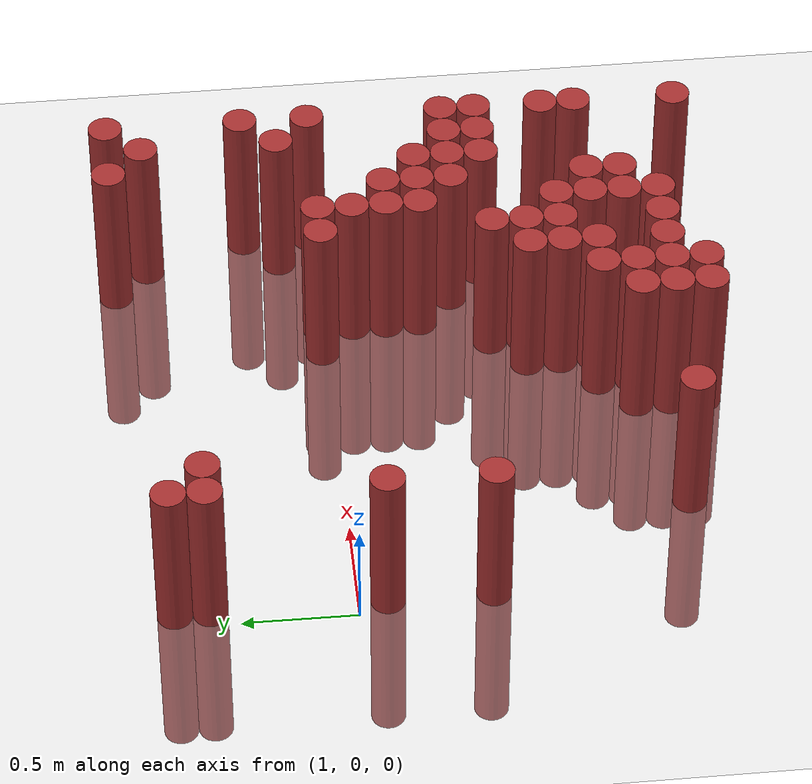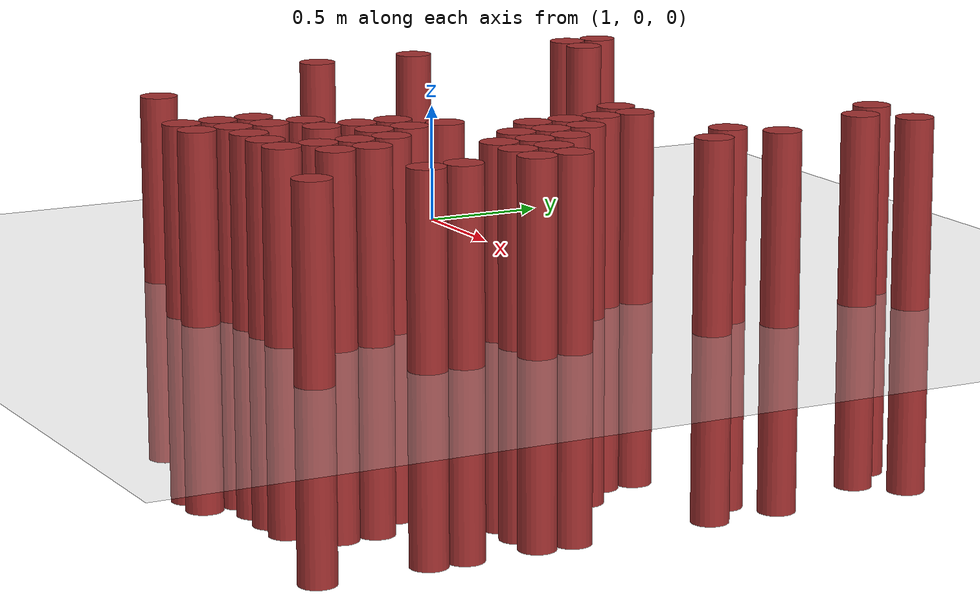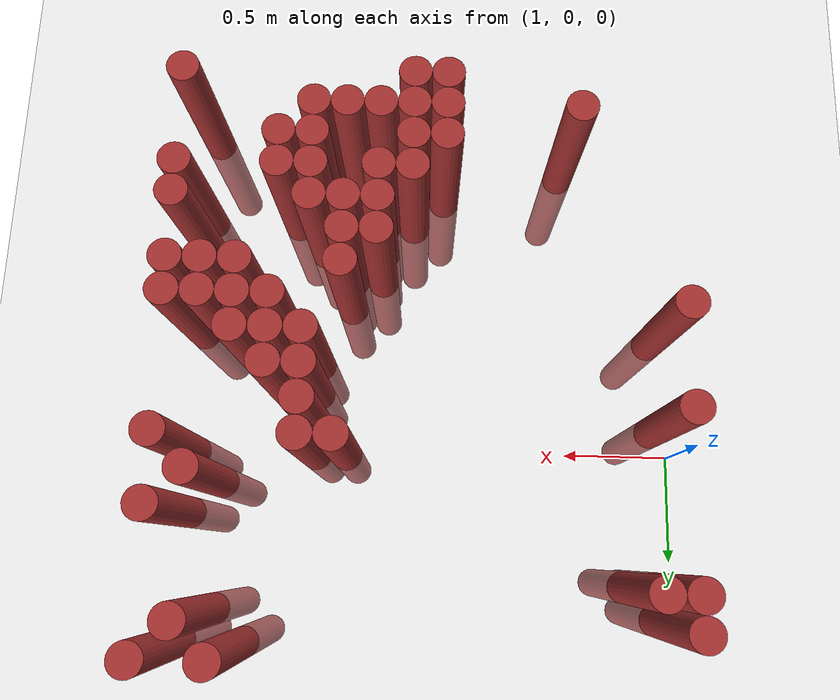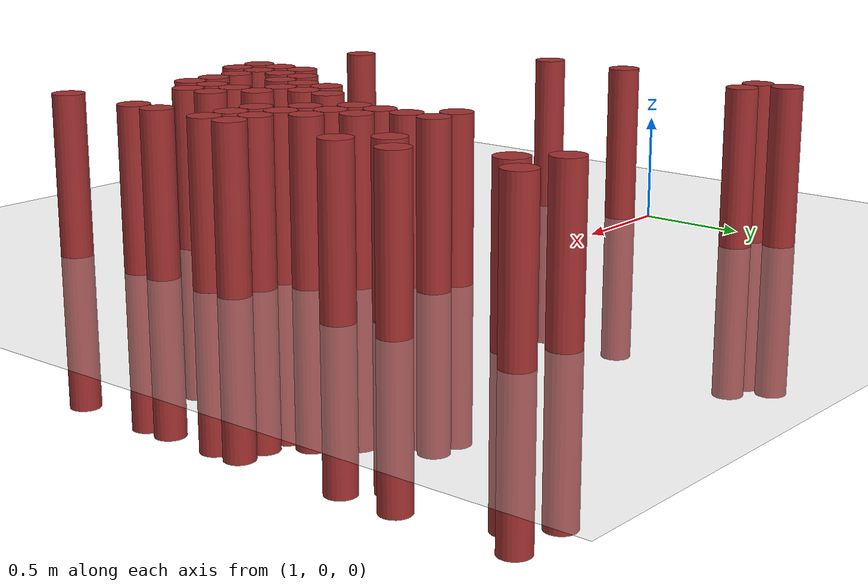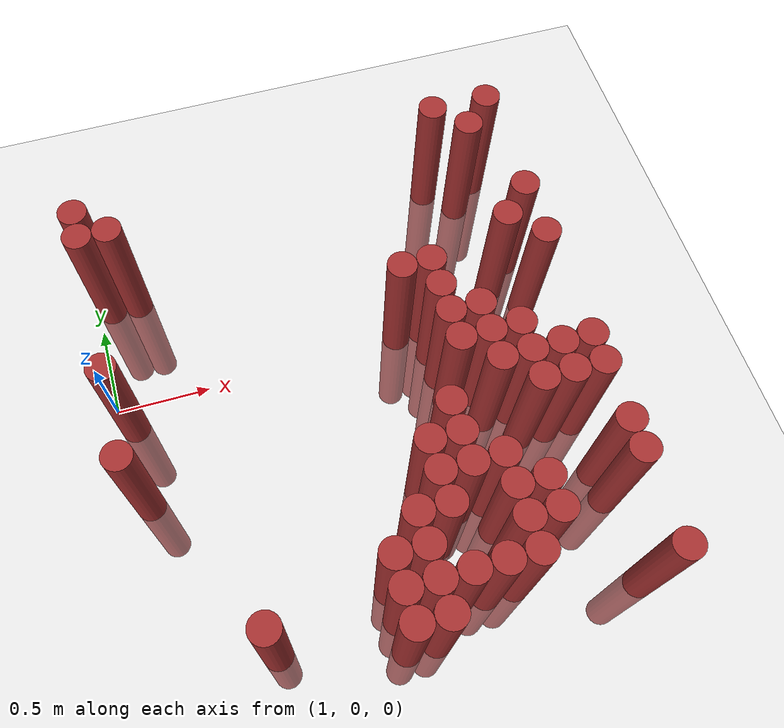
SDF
<sdf version="1.6">
 <world name="default">
  <model name="ground_plane">
   <static>1</static>
   <link name="link">
    <collision name="collision">
     <geometry><plane><normal>0 0 1</normal><size>100 100</size></plane></geometry>
     <surface><friction><ode><mu>100</mu><mu2>50</mu2></ode></friction></surface>
    </collision>
    <visual name="visual">
     <cast_shadows>0</cast_shadows>
     <geometry><plane><normal>0 0 1</normal><size>100 100</size></plane></geometry>
     <material>
      <script><uri>file://media/materials/scripts/gazebo.material</uri><name>Gazebo/Grey</name></script>
     </material>
    </visual>
   </link>
  </model>
  <model name="unit_cylinder_444">
   <static>1</static>
   <pose>1.075000 -0.575000 0.000000 0.000000 0.000000 0.000000</pose>
   <link name="link">
    <inertial>
     <mass>1</mass>
     <inertia><ixx>0.145833</ixx><ixy>0</ixy><ixz>0</ixz><iyy>0.145833</iyy><iyz>0</iyz><izz>0.125</izz></inertia>
    </inertial>
    <collision name="collision">
     <geometry><cylinder><radius>0.075000</radius><length>1.5</length></cylinder></geometry>
    </collision>
    <visual name="visual">
     <geometry><cylinder><radius>0.075000</radius><length>1.5</length></cylinder></geometry>
     <material>
      <ambient>0.648000 0.192000 0.192000 1</ambient>
      <diffuse>0.648000 0.192000 0.192000 1</diffuse>
     </material>
     <material>
      <script><name>Gazebo/Grey</name><uri>file://media/materials/scripts/gazebo.material</uri></script>
     </material>
    </visual>
   </link>
  </model>
  <model name="unit_cylinder_445">
   <static>1</static>
   <pose>1.075000 -0.125000 0.000000 0.000000 0.000000 0.000000</pose>
   <link name="link">
    <inertial>
     <mass>1</mass>
     <inertia><ixx>0.145833</ixx><ixy>0</ixy><ixz>0</ixz><iyy>0.145833</iyy><iyz>0</iyz><izz>0.125</izz></inertia>
    </inertial>
    <collision name="collision">
     <geometry><cylinder><radius>0.075000</radius><length>1.5</length></cylinder></geometry>
    </collision>
    <visual name="visual">
     <geometry><cylinder><radius>0.075000</radius><length>1.5</length></cylinder></geometry>
     <material>
      <ambient>0.648000 0.192000 0.192000 1</ambient>
      <diffuse>0.648000 0.192000 0.192000 1</diffuse>
     </material>
     <material>
      <script><name>Gazebo/Grey</name><uri>file://media/materials/scripts/gazebo.material</uri></script>
     </material>
    </visual>
   </link>
  </model>
  <model name="unit_cylinder_446">
   <static>1</static>
   <pose>1.075000 0.625000 0.000000 0.000000 0.000000 0.000000</pose>
   <link name="link">
    <inertial>
     <mass>1</mass>
     <inertia><ixx>0.145833</ixx><ixy>0</ixy><ixz>0</ixz><iyy>0.145833</iyy><iyz>0</iyz><izz>0.125</izz></inertia>
    </inertial>
    <collision name="collision">
     <geometry><cylinder><radius>0.075000</radius><length>1.5</length></cylinder></geometry>
    </collision>
    <visual name="visual">
     <geometry><cylinder><radius>0.075000</radius><length>1.5</length></cylinder></geometry>
     <material>
      <ambient>0.648000 0.192000 0.192000 1</ambient>
      <diffuse>0.648000 0.192000 0.192000 1</diffuse>
     </material>
     <material>
      <script><name>Gazebo/Grey</name><uri>file://media/materials/scripts/gazebo.material</uri></script>
     </material>
    </visual>
   </link>
  </model>
  <model name="unit_cylinder_447">
   <static>1</static>
   <pose>1.075000 0.775000 0.000000 0.000000 0.000000 0.000000</pose>
   <link name="link">
    <inertial>
     <mass>1</mass>
     <inertia><ixx>0.145833</ixx><ixy>0</ixy><ixz>0</ixz><iyy>0.145833</iyy><iyz>0</iyz><izz>0.125</izz></inertia>
    </inertial>
    <collision name="collision">
     <geometry><cylinder><radius>0.075000</radius><length>1.5</length></cylinder></geometry>
    </collision>
    <visual name="visual">
     <geometry><cylinder><radius>0.075000</radius><length>1.5</length></cylinder></geometry>
     <material>
      <ambient>0.648000 0.192000 0.192000 1</ambient>
      <diffuse>0.648000 0.192000 0.192000 1</diffuse>
     </material>
     <material>
      <script><name>Gazebo/Grey</name><uri>file://media/materials/scripts/gazebo.material</uri></script>
     </material>
    </visual>
   </link>
  </model>
  <model name="unit_cylinder_455">
   <static>1</static>
   <pose>1.225000 0.625000 0.000000 0.000000 0.000000 0.000000</pose>
   <link name="link">
    <inertial>
     <mass>1</mass>
     <inertia><ixx>0.145833</ixx><ixy>0</ixy><ixz>0</ixz><iyy>0.145833</iyy><iyz>0</iyz><izz>0.125</izz></inertia>
    </inertial>
    <collision name="collision">
     <geometry><cylinder><radius>0.075000</radius><length>1.5</length></cylinder></geometry>
    </collision>
    <visual name="visual">
     <geometry><cylinder><radius>0.075000</radius><length>1.5</length></cylinder></geometry>
     <material>
      <ambient>0.648000 0.192000 0.192000 1</ambient>
      <diffuse>0.648000 0.192000 0.192000 1</diffuse>
     </material>
     <material>
      <script><name>Gazebo/Grey</name><uri>file://media/materials/scripts/gazebo.material</uri></script>
     </material>
    </visual>
   </link>
  </model>
  <model name="unit_cylinder_472">
   <static>1</static>
   <pose>1.525000 -1.475000 0.000000 0.000000 0.000000 0.000000</pose>
   <link name="link">
    <inertial>
     <mass>1</mass>
     <inertia><ixx>0.145833</ixx><ixy>0</ixy><ixz>0</ixz><iyy>0.145833</iyy><iyz>0</iyz><izz>0.125</izz></inertia>
    </inertial>
    <collision name="collision">
     <geometry><cylinder><radius>0.075000</radius><length>1.5</length></cylinder></geometry>
    </collision>
    <visual name="visual">
     <geometry><cylinder><radius>0.075000</radius><length>1.5</length></cylinder></geometry>
     <material>
      <ambient>0.648000 0.192000 0.192000 1</ambient>
      <diffuse>0.648000 0.192000 0.192000 1</diffuse>
     </material>
     <material>
      <script><name>Gazebo/Grey</name><uri>file://media/materials/scripts/gazebo.material</uri></script>
     </material>
    </visual>
   </link>
  </model>
  <model name="unit_cylinder_497">
   <static>1</static>
   <pose>2.125000 -1.625000 0.000000 0.000000 0.000000 0.000000</pose>
   <link name="link">
    <inertial>
     <mass>1</mass>
     <inertia><ixx>0.145833</ixx><ixy>0</ixy><ixz>0</ixz><iyy>0.145833</iyy><iyz>0</iyz><izz>0.125</izz></inertia>
    </inertial>
    <collision name="collision">
     <geometry><cylinder><radius>0.075000</radius><length>1.5</length></cylinder></geometry>
    </collision>
    <visual name="visual">
     <geometry><cylinder><radius>0.075000</radius><length>1.5</length></cylinder></geometry>
     <material>
      <ambient>0.648000 0.192000 0.192000 1</ambient>
      <diffuse>0.648000 0.192000 0.192000 1</diffuse>
     </material>
     <material>
      <script><name>Gazebo/Grey</name><uri>file://media/materials/scripts/gazebo.material</uri></script>
     </material>
    </visual>
   </link>
  </model>
  <model name="unit_cylinder_498">
   <static>1</static>
   <pose>2.125000 -1.475000 0.000000 0.000000 0.000000 0.000000</pose>
   <link name="link">
    <inertial>
     <mass>1</mass>
     <inertia><ixx>0.145833</ixx><ixy>0</ixy><ixz>0</ixz><iyy>0.145833</iyy><iyz>0</iyz><izz>0.125</izz></inertia>
    </inertial>
    <collision name="collision">
     <geometry><cylinder><radius>0.075000</radius><length>1.5</length></cylinder></geometry>
    </collision>
    <visual name="visual">
     <geometry><cylinder><radius>0.075000</radius><length>1.5</length></cylinder></geometry>
     <material>
      <ambient>0.648000 0.192000 0.192000 1</ambient>
      <diffuse>0.648000 0.192000 0.192000 1</diffuse>
     </material>
     <material>
      <script><name>Gazebo/Grey</name><uri>file://media/materials/scripts/gazebo.material</uri></script>
     </material>
    </visual>
   </link>
  </model>
  <model name="unit_cylinder_499">
   <static>1</static>
   <pose>2.125000 -1.325000 0.000000 0.000000 0.000000 0.000000</pose>
   <link name="link">
    <inertial>
     <mass>1</mass>
     <inertia><ixx>0.145833</ixx><ixy>0</ixy><ixz>0</ixz><iyy>0.145833</iyy><iyz>0</iyz><izz>0.125</izz></inertia>
    </inertial>
    <collision name="collision">
     <geometry><cylinder><radius>0.075000</radius><length>1.5</length></cylinder></geometry>
    </collision>
    <visual name="visual">
     <geometry><cylinder><radius>0.075000</radius><length>1.5</length></cylinder></geometry>
     <material>
      <ambient>0.648000 0.192000 0.192000 1</ambient>
      <diffuse>0.648000 0.192000 0.192000 1</diffuse>
     </material>
     <material>
      <script><name>Gazebo/Grey</name><uri>file://media/materials/scripts/gazebo.material</uri></script>
     </material>
    </visual>
   </link>
  </model>
  <model name="unit_cylinder_506">
   <static>1</static>
   <pose>2.275000 -1.625000 0.000000 0.000000 0.000000 0.000000</pose>
   <link name="link">
    <inertial>
     <mass>1</mass>
     <inertia><ixx>0.145833</ixx><ixy>0</ixy><ixz>0</ixz><iyy>0.145833</iyy><iyz>0</iyz><izz>0.125</izz></inertia>
    </inertial>
    <collision name="collision">
     <geometry><cylinder><radius>0.075000</radius><length>1.5</length></cylinder></geometry>
    </collision>
    <visual name="visual">
     <geometry><cylinder><radius>0.075000</radius><length>1.5</length></cylinder></geometry>
     <material>
      <ambient>0.648000 0.192000 0.192000 1</ambient>
      <diffuse>0.648000 0.192000 0.192000 1</diffuse>
     </material>
     <material>
      <script><name>Gazebo/Grey</name><uri>file://media/materials/scripts/gazebo.material</uri></script>
     </material>
    </visual>
   </link>
  </model>
  <model name="unit_cylinder_507">
   <static>1</static>
   <pose>2.275000 -1.475000 0.000000 0.000000 0.000000 0.000000</pose>
   <link name="link">
    <inertial>
     <mass>1</mass>
     <inertia><ixx>0.145833</ixx><ixy>0</ixy><ixz>0</ixz><iyy>0.145833</iyy><iyz>0</iyz><izz>0.125</izz></inertia>
    </inertial>
    <collision name="collision">
     <geometry><cylinder><radius>0.075000</radius><length>1.5</length></cylinder></geometry>
    </collision>
    <visual name="visual">
     <geometry><cylinder><radius>0.075000</radius><length>1.5</length></cylinder></geometry>
     <material>
      <ambient>0.648000 0.192000 0.192000 1</ambient>
      <diffuse>0.648000 0.192000 0.192000 1</diffuse>
     </material>
     <material>
      <script><name>Gazebo/Grey</name><uri>file://media/materials/scripts/gazebo.material</uri></script>
     </material>
    </visual>
   </link>
  </model>
  <model name="unit_cylinder_508">
   <static>1</static>
   <pose>2.275000 -1.325000 0.000000 0.000000 0.000000 0.000000</pose>
   <link name="link">
    <inertial>
     <mass>1</mass>
     <inertia><ixx>0.145833</ixx><ixy>0</ixy><ixz>0</ixz><iyy>0.145833</iyy><iyz>0</iyz><izz>0.125</izz></inertia>
    </inertial>
    <collision name="collision">
     <geometry><cylinder><radius>0.075000</radius><length>1.5</length></cylinder></geometry>
    </collision>
    <visual name="visual">
     <geometry><cylinder><radius>0.075000</radius><length>1.5</length></cylinder></geometry>
     <material>
      <ambient>0.648000 0.192000 0.192000 1</ambient>
      <diffuse>0.648000 0.192000 0.192000 1</diffuse>
     </material>
     <material>
      <script><name>Gazebo/Grey</name><uri>file://media/materials/scripts/gazebo.material</uri></script>
     </material>
    </visual>
   </link>
  </model>
  <model name="unit_cylinder_509">
   <static>1</static>
   <pose>2.275000 -1.175000 0.000000 0.000000 0.000000 0.000000</pose>
   <link name="link">
    <inertial>
     <mass>1</mass>
     <inertia><ixx>0.145833</ixx><ixy>0</ixy><ixz>0</ixz><iyy>0.145833</iyy><iyz>0</iyz><izz>0.125</izz></inertia>
    </inertial>
    <collision name="collision">
     <geometry><cylinder><radius>0.075000</radius><length>1.5</length></cylinder></geometry>
    </collision>
    <visual name="visual">
     <geometry><cylinder><radius>0.075000</radius><length>1.5</length></cylinder></geometry>
     <material>
      <ambient>0.648000 0.192000 0.192000 1</ambient>
      <diffuse>0.648000 0.192000 0.192000 1</diffuse>
     </material>
     <material>
      <script><name>Gazebo/Grey</name><uri>file://media/materials/scripts/gazebo.material</uri></script>
     </material>
    </visual>
   </link>
  </model>
  <model name="unit_cylinder_513">
   <static>1</static>
   <pose>2.425000 -1.475000 0.000000 0.000000 0.000000 0.000000</pose>
   <link name="link">
    <inertial>
     <mass>1</mass>
     <inertia><ixx>0.145833</ixx><ixy>0</ixy><ixz>0</ixz><iyy>0.145833</iyy><iyz>0</iyz><izz>0.125</izz></inertia>
    </inertial>
    <collision name="collision">
     <geometry><cylinder><radius>0.075000</radius><length>1.5</length></cylinder></geometry>
    </collision>
    <visual name="visual">
     <geometry><cylinder><radius>0.075000</radius><length>1.5</length></cylinder></geometry>
     <material>
      <ambient>0.648000 0.192000 0.192000 1</ambient>
      <diffuse>0.648000 0.192000 0.192000 1</diffuse>
     </material>
     <material>
      <script><name>Gazebo/Grey</name><uri>file://media/materials/scripts/gazebo.material</uri></script>
     </material>
    </visual>
   </link>
  </model>
  <model name="unit_cylinder_514">
   <static>1</static>
   <pose>2.425000 -1.175000 0.000000 0.000000 0.000000 0.000000</pose>
   <link name="link">
    <inertial>
     <mass>1</mass>
     <inertia><ixx>0.145833</ixx><ixy>0</ixy><ixz>0</ixz><iyy>0.145833</iyy><iyz>0</iyz><izz>0.125</izz></inertia>
    </inertial>
    <collision name="collision">
     <geometry><cylinder><radius>0.075000</radius><length>1.5</length></cylinder></geometry>
    </collision>
    <visual name="visual">
     <geometry><cylinder><radius>0.075000</radius><length>1.5</length></cylinder></geometry>
     <material>
      <ambient>0.648000 0.192000 0.192000 1</ambient>
      <diffuse>0.648000 0.192000 0.192000 1</diffuse>
     </material>
     <material>
      <script><name>Gazebo/Grey</name><uri>file://media/materials/scripts/gazebo.material</uri></script>
     </material>
    </visual>
   </link>
  </model>
  <model name="unit_cylinder_515">
   <static>1</static>
   <pose>2.425000 -1.025000 0.000000 0.000000 0.000000 0.000000</pose>
   <link name="link">
    <inertial>
     <mass>1</mass>
     <inertia><ixx>0.145833</ixx><ixy>0</ixy><ixz>0</ixz><iyy>0.145833</iyy><iyz>0</iyz><izz>0.125</izz></inertia>
    </inertial>
    <collision name="collision">
     <geometry><cylinder><radius>0.075000</radius><length>1.5</length></cylinder></geometry>
    </collision>
    <visual name="visual">
     <geometry><cylinder><radius>0.075000</radius><length>1.5</length></cylinder></geometry>
     <material>
      <ambient>0.648000 0.192000 0.192000 1</ambient>
      <diffuse>0.648000 0.192000 0.192000 1</diffuse>
     </material>
     <material>
      <script><name>Gazebo/Grey</name><uri>file://media/materials/scripts/gazebo.material</uri></script>
     </material>
    </visual>
   </link>
  </model>
  <model name="unit_cylinder_516">
   <static>1</static>
   <pose>2.425000 -0.875000 0.000000 0.000000 0.000000 0.000000</pose>
   <link name="link">
    <inertial>
     <mass>1</mass>
     <inertia><ixx>0.145833</ixx><ixy>0</ixy><ixz>0</ixz><iyy>0.145833</iyy><iyz>0</iyz><izz>0.125</izz></inertia>
    </inertial>
    <collision name="collision">
     <geometry><cylinder><radius>0.075000</radius><length>1.5</length></cylinder></geometry>
    </collision>
    <visual name="visual">
     <geometry><cylinder><radius>0.075000</radius><length>1.5</length></cylinder></geometry>
     <material>
      <ambient>0.648000 0.192000 0.192000 1</ambient>
      <diffuse>0.648000 0.192000 0.192000 1</diffuse>
     </material>
     <material>
      <script><name>Gazebo/Grey</name><uri>file://media/materials/scripts/gazebo.material</uri></script>
     </material>
    </visual>
   </link>
  </model>
  <model name="unit_cylinder_519">
   <static>1</static>
   <pose>2.575000 -1.475000 0.000000 0.000000 0.000000 0.000000</pose>
   <link name="link">
    <inertial>
     <mass>1</mass>
     <inertia><ixx>0.145833</ixx><ixy>0</ixy><ixz>0</ixz><iyy>0.145833</iyy><iyz>0</iyz><izz>0.125</izz></inertia>
    </inertial>
    <collision name="collision">
     <geometry><cylinder><radius>0.075000</radius><length>1.5</length></cylinder></geometry>
    </collision>
    <visual name="visual">
     <geometry><cylinder><radius>0.075000</radius><length>1.5</length></cylinder></geometry>
     <material>
      <ambient>0.648000 0.192000 0.192000 1</ambient>
      <diffuse>0.648000 0.192000 0.192000 1</diffuse>
     </material>
     <material>
      <script><name>Gazebo/Grey</name><uri>file://media/materials/scripts/gazebo.material</uri></script>
     </material>
    </visual>
   </link>
  </model>
  <model name="unit_cylinder_520">
   <static>1</static>
   <pose>2.575000 -1.025000 0.000000 0.000000 0.000000 0.000000</pose>
   <link name="link">
    <inertial>
     <mass>1</mass>
     <inertia><ixx>0.145833</ixx><ixy>0</ixy><ixz>0</ixz><iyy>0.145833</iyy><iyz>0</iyz><izz>0.125</izz></inertia>
    </inertial>
    <collision name="collision">
     <geometry><cylinder><radius>0.075000</radius><length>1.5</length></cylinder></geometry>
    </collision>
    <visual name="visual">
     <geometry><cylinder><radius>0.075000</radius><length>1.5</length></cylinder></geometry>
     <material>
      <ambient>0.648000 0.192000 0.192000 1</ambient>
      <diffuse>0.648000 0.192000 0.192000 1</diffuse>
     </material>
     <material>
      <script><name>Gazebo/Grey</name><uri>file://media/materials/scripts/gazebo.material</uri></script>
     </material>
    </visual>
   </link>
  </model>
  <model name="unit_cylinder_521">
   <static>1</static>
   <pose>2.575000 -0.875000 0.000000 0.000000 0.000000 0.000000</pose>
   <link name="link">
    <inertial>
     <mass>1</mass>
     <inertia><ixx>0.145833</ixx><ixy>0</ixy><ixz>0</ixz><iyy>0.145833</iyy><iyz>0</iyz><izz>0.125</izz></inertia>
    </inertial>
    <collision name="collision">
     <geometry><cylinder><radius>0.075000</radius><length>1.5</length></cylinder></geometry>
    </collision>
    <visual name="visual">
     <geometry><cylinder><radius>0.075000</radius><length>1.5</length></cylinder></geometry>
     <material>
      <ambient>0.648000 0.192000 0.192000 1</ambient>
      <diffuse>0.648000 0.192000 0.192000 1</diffuse>
     </material>
     <material>
      <script><name>Gazebo/Grey</name><uri>file://media/materials/scripts/gazebo.material</uri></script>
     </material>
    </visual>
   </link>
  </model>
  <model name="unit_cylinder_522">
   <static>1</static>
   <pose>2.575000 -0.725000 0.000000 0.000000 0.000000 0.000000</pose>
   <link name="link">
    <inertial>
     <mass>1</mass>
     <inertia><ixx>0.145833</ixx><ixy>0</ixy><ixz>0</ixz><iyy>0.145833</iyy><iyz>0</iyz><izz>0.125</izz></inertia>
    </inertial>
    <collision name="collision">
     <geometry><cylinder><radius>0.075000</radius><length>1.5</length></cylinder></geometry>
    </collision>
    <visual name="visual">
     <geometry><cylinder><radius>0.075000</radius><length>1.5</length></cylinder></geometry>
     <material>
      <ambient>0.648000 0.192000 0.192000 1</ambient>
      <diffuse>0.648000 0.192000 0.192000 1</diffuse>
     </material>
     <material>
      <script><name>Gazebo/Grey</name><uri>file://media/materials/scripts/gazebo.material</uri></script>
     </material>
    </visual>
   </link>
  </model>
  <model name="unit_cylinder_523">
   <static>1</static>
   <pose>2.575000 0.025000 0.000000 0.000000 0.000000 0.000000</pose>
   <link name="link">
    <inertial>
     <mass>1</mass>
     <inertia><ixx>0.145833</ixx><ixy>0</ixy><ixz>0</ixz><iyy>0.145833</iyy><iyz>0</iyz><izz>0.125</izz></inertia>
    </inertial>
    <collision name="collision">
     <geometry><cylinder><radius>0.075000</radius><length>1.5</length></cylinder></geometry>
    </collision>
    <visual name="visual">
     <geometry><cylinder><radius>0.075000</radius><length>1.5</length></cylinder></geometry>
     <material>
      <ambient>0.648000 0.192000 0.192000 1</ambient>
      <diffuse>0.648000 0.192000 0.192000 1</diffuse>
     </material>
     <material>
      <script><name>Gazebo/Grey</name><uri>file://media/materials/scripts/gazebo.material</uri></script>
     </material>
    </visual>
   </link>
  </model>
  <model name="unit_cylinder_530">
   <static>1</static>
   <pose>2.725000 -1.475000 0.000000 0.000000 0.000000 0.000000</pose>
   <link name="link">
    <inertial>
     <mass>1</mass>
     <inertia><ixx>0.145833</ixx><ixy>0</ixy><ixz>0</ixz><iyy>0.145833</iyy><iyz>0</iyz><izz>0.125</izz></inertia>
    </inertial>
    <collision name="collision">
     <geometry><cylinder><radius>0.075000</radius><length>1.5</length></cylinder></geometry>
    </collision>
    <visual name="visual">
     <geometry><cylinder><radius>0.075000</radius><length>1.5</length></cylinder></geometry>
     <material>
      <ambient>0.648000 0.192000 0.192000 1</ambient>
      <diffuse>0.648000 0.192000 0.192000 1</diffuse>
     </material>
     <material>
      <script><name>Gazebo/Grey</name><uri>file://media/materials/scripts/gazebo.material</uri></script>
     </material>
    </visual>
   </link>
  </model>
  <model name="unit_cylinder_531">
   <static>1</static>
   <pose>2.725000 -1.325000 0.000000 0.000000 0.000000 0.000000</pose>
   <link name="link">
    <inertial>
     <mass>1</mass>
     <inertia><ixx>0.145833</ixx><ixy>0</ixy><ixz>0</ixz><iyy>0.145833</iyy><iyz>0</iyz><izz>0.125</izz></inertia>
    </inertial>
    <collision name="collision">
     <geometry><cylinder><radius>0.075000</radius><length>1.5</length></cylinder></geometry>
    </collision>
    <visual name="visual">
     <geometry><cylinder><radius>0.075000</radius><length>1.5</length></cylinder></geometry>
     <material>
      <ambient>0.648000 0.192000 0.192000 1</ambient>
      <diffuse>0.648000 0.192000 0.192000 1</diffuse>
     </material>
     <material>
      <script><name>Gazebo/Grey</name><uri>file://media/materials/scripts/gazebo.material</uri></script>
     </material>
    </visual>
   </link>
  </model>
  <model name="unit_cylinder_532">
   <static>1</static>
   <pose>2.725000 -1.175000 0.000000 0.000000 0.000000 0.000000</pose>
   <link name="link">
    <inertial>
     <mass>1</mass>
     <inertia><ixx>0.145833</ixx><ixy>0</ixy><ixz>0</ixz><iyy>0.145833</iyy><iyz>0</iyz><izz>0.125</izz></inertia>
    </inertial>
    <collision name="collision">
     <geometry><cylinder><radius>0.075000</radius><length>1.5</length></cylinder></geometry>
    </collision>
    <visual name="visual">
     <geometry><cylinder><radius>0.075000</radius><length>1.5</length></cylinder></geometry>
     <material>
      <ambient>0.648000 0.192000 0.192000 1</ambient>
      <diffuse>0.648000 0.192000 0.192000 1</diffuse>
     </material>
     <material>
      <script><name>Gazebo/Grey</name><uri>file://media/materials/scripts/gazebo.material</uri></script>
     </material>
    </visual>
   </link>
  </model>
  <model name="unit_cylinder_533">
   <static>1</static>
   <pose>2.725000 -1.025000 0.000000 0.000000 0.000000 0.000000</pose>
   <link name="link">
    <inertial>
     <mass>1</mass>
     <inertia><ixx>0.145833</ixx><ixy>0</ixy><ixz>0</ixz><iyy>0.145833</iyy><iyz>0</iyz><izz>0.125</izz></inertia>
    </inertial>
    <collision name="collision">
     <geometry><cylinder><radius>0.075000</radius><length>1.5</length></cylinder></geometry>
    </collision>
    <visual name="visual">
     <geometry><cylinder><radius>0.075000</radius><length>1.5</length></cylinder></geometry>
     <material>
      <ambient>0.648000 0.192000 0.192000 1</ambient>
      <diffuse>0.648000 0.192000 0.192000 1</diffuse>
     </material>
     <material>
      <script><name>Gazebo/Grey</name><uri>file://media/materials/scripts/gazebo.material</uri></script>
     </material>
    </visual>
   </link>
  </model>
  <model name="unit_cylinder_534">
   <static>1</static>
   <pose>2.725000 -0.425000 0.000000 0.000000 0.000000 0.000000</pose>
   <link name="link">
    <inertial>
     <mass>1</mass>
     <inertia><ixx>0.145833</ixx><ixy>0</ixy><ixz>0</ixz><iyy>0.145833</iyy><iyz>0</iyz><izz>0.125</izz></inertia>
    </inertial>
    <collision name="collision">
     <geometry><cylinder><radius>0.075000</radius><length>1.5</length></cylinder></geometry>
    </collision>
    <visual name="visual">
     <geometry><cylinder><radius>0.075000</radius><length>1.5</length></cylinder></geometry>
     <material>
      <ambient>0.648000 0.192000 0.192000 1</ambient>
      <diffuse>0.648000 0.192000 0.192000 1</diffuse>
     </material>
     <material>
      <script><name>Gazebo/Grey</name><uri>file://media/materials/scripts/gazebo.material</uri></script>
     </material>
    </visual>
   </link>
  </model>
  <model name="unit_cylinder_535">
   <static>1</static>
   <pose>2.725000 -0.275000 0.000000 0.000000 0.000000 0.000000</pose>
   <link name="link">
    <inertial>
     <mass>1</mass>
     <inertia><ixx>0.145833</ixx><ixy>0</ixy><ixz>0</ixz><iyy>0.145833</iyy><iyz>0</iyz><izz>0.125</izz></inertia>
    </inertial>
    <collision name="collision">
     <geometry><cylinder><radius>0.075000</radius><length>1.5</length></cylinder></geometry>
    </collision>
    <visual name="visual">
     <geometry><cylinder><radius>0.075000</radius><length>1.5</length></cylinder></geometry>
     <material>
      <ambient>0.648000 0.192000 0.192000 1</ambient>
      <diffuse>0.648000 0.192000 0.192000 1</diffuse>
     </material>
     <material>
      <script><name>Gazebo/Grey</name><uri>file://media/materials/scripts/gazebo.material</uri></script>
     </material>
    </visual>
   </link>
  </model>
  <model name="unit_cylinder_536">
   <static>1</static>
   <pose>2.725000 -0.125000 0.000000 0.000000 0.000000 0.000000</pose>
   <link name="link">
    <inertial>
     <mass>1</mass>
     <inertia><ixx>0.145833</ixx><ixy>0</ixy><ixz>0</ixz><iyy>0.145833</iyy><iyz>0</iyz><izz>0.125</izz></inertia>
    </inertial>
    <collision name="collision">
     <geometry><cylinder><radius>0.075000</radius><length>1.5</length></cylinder></geometry>
    </collision>
    <visual name="visual">
     <geometry><cylinder><radius>0.075000</radius><length>1.5</length></cylinder></geometry>
     <material>
      <ambient>0.648000 0.192000 0.192000 1</ambient>
      <diffuse>0.648000 0.192000 0.192000 1</diffuse>
     </material>
     <material>
      <script><name>Gazebo/Grey</name><uri>file://media/materials/scripts/gazebo.material</uri></script>
     </material>
    </visual>
   </link>
  </model>
  <model name="unit_cylinder_537">
   <static>1</static>
   <pose>2.725000 0.025000 0.000000 0.000000 0.000000 0.000000</pose>
   <link name="link">
    <inertial>
     <mass>1</mass>
     <inertia><ixx>0.145833</ixx><ixy>0</ixy><ixz>0</ixz><iyy>0.145833</iyy><iyz>0</iyz><izz>0.125</izz></inertia>
    </inertial>
    <collision name="collision">
     <geometry><cylinder><radius>0.075000</radius><length>1.5</length></cylinder></geometry>
    </collision>
    <visual name="visual">
     <geometry><cylinder><radius>0.075000</radius><length>1.5</length></cylinder></geometry>
     <material>
      <ambient>0.648000 0.192000 0.192000 1</ambient>
      <diffuse>0.648000 0.192000 0.192000 1</diffuse>
     </material>
     <material>
      <script><name>Gazebo/Grey</name><uri>file://media/materials/scripts/gazebo.material</uri></script>
     </material>
    </visual>
   </link>
  </model>
  <model name="unit_cylinder_544">
   <static>1</static>
   <pose>2.875000 -1.325000 0.000000 0.000000 0.000000 0.000000</pose>
   <link name="link">
    <inertial>
     <mass>1</mass>
     <inertia><ixx>0.145833</ixx><ixy>0</ixy><ixz>0</ixz><iyy>0.145833</iyy><iyz>0</iyz><izz>0.125</izz></inertia>
    </inertial>
    <collision name="collision">
     <geometry><cylinder><radius>0.075000</radius><length>1.5</length></cylinder></geometry>
    </collision>
    <visual name="visual">
     <geometry><cylinder><radius>0.075000</radius><length>1.5</length></cylinder></geometry>
     <material>
      <ambient>0.648000 0.192000 0.192000 1</ambient>
      <diffuse>0.648000 0.192000 0.192000 1</diffuse>
     </material>
     <material>
      <script><name>Gazebo/Grey</name><uri>file://media/materials/scripts/gazebo.material</uri></script>
     </material>
    </visual>
   </link>
  </model>
  <model name="unit_cylinder_545">
   <static>1</static>
   <pose>2.875000 -1.175000 0.000000 0.000000 0.000000 0.000000</pose>
   <link name="link">
    <inertial>
     <mass>1</mass>
     <inertia><ixx>0.145833</ixx><ixy>0</ixy><ixz>0</ixz><iyy>0.145833</iyy><iyz>0</iyz><izz>0.125</izz></inertia>
    </inertial>
    <collision name="collision">
     <geometry><cylinder><radius>0.075000</radius><length>1.5</length></cylinder></geometry>
    </collision>
    <visual name="visual">
     <geometry><cylinder><radius>0.075000</radius><length>1.5</length></cylinder></geometry>
     <material>
      <ambient>0.648000 0.192000 0.192000 1</ambient>
      <diffuse>0.648000 0.192000 0.192000 1</diffuse>
     </material>
     <material>
      <script><name>Gazebo/Grey</name><uri>file://media/materials/scripts/gazebo.material</uri></script>
     </material>
    </visual>
   </link>
  </model>
  <model name="unit_cylinder_546">
   <static>1</static>
   <pose>2.875000 -0.575000 0.000000 0.000000 0.000000 0.000000</pose>
   <link name="link">
    <inertial>
     <mass>1</mass>
     <inertia><ixx>0.145833</ixx><ixy>0</ixy><ixz>0</ixz><iyy>0.145833</iyy><iyz>0</iyz><izz>0.125</izz></inertia>
    </inertial>
    <collision name="collision">
     <geometry><cylinder><radius>0.075000</radius><length>1.5</length></cylinder></geometry>
    </collision>
    <visual name="visual">
     <geometry><cylinder><radius>0.075000</radius><length>1.5</length></cylinder></geometry>
     <material>
      <ambient>0.648000 0.192000 0.192000 1</ambient>
      <diffuse>0.648000 0.192000 0.192000 1</diffuse>
     </material>
     <material>
      <script><name>Gazebo/Grey</name><uri>file://media/materials/scripts/gazebo.material</uri></script>
     </material>
    </visual>
   </link>
  </model>
  <model name="unit_cylinder_547">
   <static>1</static>
   <pose>2.875000 -0.425000 0.000000 0.000000 0.000000 0.000000</pose>
   <link name="link">
    <inertial>
     <mass>1</mass>
     <inertia><ixx>0.145833</ixx><ixy>0</ixy><ixz>0</ixz><iyy>0.145833</iyy><iyz>0</iyz><izz>0.125</izz></inertia>
    </inertial>
    <collision name="collision">
     <geometry><cylinder><radius>0.075000</radius><length>1.5</length></cylinder></geometry>
    </collision>
    <visual name="visual">
     <geometry><cylinder><radius>0.075000</radius><length>1.5</length></cylinder></geometry>
     <material>
      <ambient>0.648000 0.192000 0.192000 1</ambient>
      <diffuse>0.648000 0.192000 0.192000 1</diffuse>
     </material>
     <material>
      <script><name>Gazebo/Grey</name><uri>file://media/materials/scripts/gazebo.material</uri></script>
     </material>
    </visual>
   </link>
  </model>
  <model name="unit_cylinder_548">
   <static>1</static>
   <pose>2.875000 -0.275000 0.000000 0.000000 0.000000 0.000000</pose>
   <link name="link">
    <inertial>
     <mass>1</mass>
     <inertia><ixx>0.145833</ixx><ixy>0</ixy><ixz>0</ixz><iyy>0.145833</iyy><iyz>0</iyz><izz>0.125</izz></inertia>
    </inertial>
    <collision name="collision">
     <geometry><cylinder><radius>0.075000</radius><length>1.5</length></cylinder></geometry>
    </collision>
    <visual name="visual">
     <geometry><cylinder><radius>0.075000</radius><length>1.5</length></cylinder></geometry>
     <material>
      <ambient>0.648000 0.192000 0.192000 1</ambient>
      <diffuse>0.648000 0.192000 0.192000 1</diffuse>
     </material>
     <material>
      <script><name>Gazebo/Grey</name><uri>file://media/materials/scripts/gazebo.material</uri></script>
     </material>
    </visual>
   </link>
  </model>
  <model name="unit_cylinder_554">
   <static>1</static>
   <pose>3.025000 -0.725000 0.000000 0.000000 0.000000 0.000000</pose>
   <link name="link">
    <inertial>
     <mass>1</mass>
     <inertia><ixx>0.145833</ixx><ixy>0</ixy><ixz>0</ixz><iyy>0.145833</iyy><iyz>0</iyz><izz>0.125</izz></inertia>
    </inertial>
    <collision name="collision">
     <geometry><cylinder><radius>0.075000</radius><length>1.5</length></cylinder></geometry>
    </collision>
    <visual name="visual">
     <geometry><cylinder><radius>0.075000</radius><length>1.5</length></cylinder></geometry>
     <material>
      <ambient>0.648000 0.192000 0.192000 1</ambient>
      <diffuse>0.648000 0.192000 0.192000 1</diffuse>
     </material>
     <material>
      <script><name>Gazebo/Grey</name><uri>file://media/materials/scripts/gazebo.material</uri></script>
     </material>
    </visual>
   </link>
  </model>
  <model name="unit_cylinder_555">
   <static>1</static>
   <pose>3.025000 -0.575000 0.000000 0.000000 0.000000 0.000000</pose>
   <link name="link">
    <inertial>
     <mass>1</mass>
     <inertia><ixx>0.145833</ixx><ixy>0</ixy><ixz>0</ixz><iyy>0.145833</iyy><iyz>0</iyz><izz>0.125</izz></inertia>
    </inertial>
    <collision name="collision">
     <geometry><cylinder><radius>0.075000</radius><length>1.5</length></cylinder></geometry>
    </collision>
    <visual name="visual">
     <geometry><cylinder><radius>0.075000</radius><length>1.5</length></cylinder></geometry>
     <material>
      <ambient>0.648000 0.192000 0.192000 1</ambient>
      <diffuse>0.648000 0.192000 0.192000 1</diffuse>
     </material>
     <material>
      <script><name>Gazebo/Grey</name><uri>file://media/materials/scripts/gazebo.material</uri></script>
     </material>
    </visual>
   </link>
  </model>
  <model name="unit_cylinder_556">
   <static>1</static>
   <pose>3.025000 -0.425000 0.000000 0.000000 0.000000 0.000000</pose>
   <link name="link">
    <inertial>
     <mass>1</mass>
     <inertia><ixx>0.145833</ixx><ixy>0</ixy><ixz>0</ixz><iyy>0.145833</iyy><iyz>0</iyz><izz>0.125</izz></inertia>
    </inertial>
    <collision name="collision">
     <geometry><cylinder><radius>0.075000</radius><length>1.5</length></cylinder></geometry>
    </collision>
    <visual name="visual">
     <geometry><cylinder><radius>0.075000</radius><length>1.5</length></cylinder></geometry>
     <material>
      <ambient>0.648000 0.192000 0.192000 1</ambient>
      <diffuse>0.648000 0.192000 0.192000 1</diffuse>
     </material>
     <material>
      <script><name>Gazebo/Grey</name><uri>file://media/materials/scripts/gazebo.material</uri></script>
     </material>
    </visual>
   </link>
  </model>
  <model name="unit_cylinder_557">
   <static>1</static>
   <pose>3.025000 0.925000 0.000000 0.000000 0.000000 0.000000</pose>
   <link name="link">
    <inertial>
     <mass>1</mass>
     <inertia><ixx>0.145833</ixx><ixy>0</ixy><ixz>0</ixz><iyy>0.145833</iyy><iyz>0</iyz><izz>0.125</izz></inertia>
    </inertial>
    <collision name="collision">
     <geometry><cylinder><radius>0.075000</radius><length>1.5</length></cylinder></geometry>
    </collision>
    <visual name="visual">
     <geometry><cylinder><radius>0.075000</radius><length>1.5</length></cylinder></geometry>
     <material>
      <ambient>0.648000 0.192000 0.192000 1</ambient>
      <diffuse>0.648000 0.192000 0.192000 1</diffuse>
     </material>
     <material>
      <script><name>Gazebo/Grey</name><uri>file://media/materials/scripts/gazebo.material</uri></script>
     </material>
    </visual>
   </link>
  </model>
  <model name="unit_cylinder_564">
   <static>1</static>
   <pose>3.175000 -0.725000 0.000000 0.000000 0.000000 0.000000</pose>
   <link name="link">
    <inertial>
     <mass>1</mass>
     <inertia><ixx>0.145833</ixx><ixy>0</ixy><ixz>0</ixz><iyy>0.145833</iyy><iyz>0</iyz><izz>0.125</izz></inertia>
    </inertial>
    <collision name="collision">
     <geometry><cylinder><radius>0.075000</radius><length>1.5</length></cylinder></geometry>
    </collision>
    <visual name="visual">
     <geometry><cylinder><radius>0.075000</radius><length>1.5</length></cylinder></geometry>
     <material>
      <ambient>0.648000 0.192000 0.192000 1</ambient>
      <diffuse>0.648000 0.192000 0.192000 1</diffuse>
     </material>
     <material>
      <script><name>Gazebo/Grey</name><uri>file://media/materials/scripts/gazebo.material</uri></script>
     </material>
    </visual>
   </link>
  </model>
  <model name="unit_cylinder_565">
   <static>1</static>
   <pose>3.175000 -0.575000 0.000000 0.000000 0.000000 0.000000</pose>
   <link name="link">
    <inertial>
     <mass>1</mass>
     <inertia><ixx>0.145833</ixx><ixy>0</ixy><ixz>0</ixz><iyy>0.145833</iyy><iyz>0</iyz><izz>0.125</izz></inertia>
    </inertial>
    <collision name="collision">
     <geometry><cylinder><radius>0.075000</radius><length>1.5</length></cylinder></geometry>
    </collision>
    <visual name="visual">
     <geometry><cylinder><radius>0.075000</radius><length>1.5</length></cylinder></geometry>
     <material>
      <ambient>0.648000 0.192000 0.192000 1</ambient>
      <diffuse>0.648000 0.192000 0.192000 1</diffuse>
     </material>
     <material>
      <script><name>Gazebo/Grey</name><uri>file://media/materials/scripts/gazebo.material</uri></script>
     </material>
    </visual>
   </link>
  </model>
  <model name="unit_cylinder_566">
   <static>1</static>
   <pose>3.175000 0.175000 0.000000 0.000000 0.000000 0.000000</pose>
   <link name="link">
    <inertial>
     <mass>1</mass>
     <inertia><ixx>0.145833</ixx><ixy>0</ixy><ixz>0</ixz><iyy>0.145833</iyy><iyz>0</iyz><izz>0.125</izz></inertia>
    </inertial>
    <collision name="collision">
     <geometry><cylinder><radius>0.075000</radius><length>1.5</length></cylinder></geometry>
    </collision>
    <visual name="visual">
     <geometry><cylinder><radius>0.075000</radius><length>1.5</length></cylinder></geometry>
     <material>
      <ambient>0.648000 0.192000 0.192000 1</ambient>
      <diffuse>0.648000 0.192000 0.192000 1</diffuse>
     </material>
     <material>
      <script><name>Gazebo/Grey</name><uri>file://media/materials/scripts/gazebo.material</uri></script>
     </material>
    </visual>
   </link>
  </model>
  <model name="unit_cylinder_567">
   <static>1</static>
   <pose>3.175000 0.775000 0.000000 0.000000 0.000000 0.000000</pose>
   <link name="link">
    <inertial>
     <mass>1</mass>
     <inertia><ixx>0.145833</ixx><ixy>0</ixy><ixz>0</ixz><iyy>0.145833</iyy><iyz>0</iyz><izz>0.125</izz></inertia>
    </inertial>
    <collision name="collision">
     <geometry><cylinder><radius>0.075000</radius><length>1.5</length></cylinder></geometry>
    </collision>
    <visual name="visual">
     <geometry><cylinder><radius>0.075000</radius><length>1.5</length></cylinder></geometry>
     <material>
      <ambient>0.648000 0.192000 0.192000 1</ambient>
      <diffuse>0.648000 0.192000 0.192000 1</diffuse>
     </material>
     <material>
      <script><name>Gazebo/Grey</name><uri>file://media/materials/scripts/gazebo.material</uri></script>
     </material>
    </visual>
   </link>
  </model>
  <model name="unit_cylinder_576">
   <static>1</static>
   <pose>3.325000 -1.625000 0.000000 0.000000 0.000000 0.000000</pose>
   <link name="link">
    <inertial>
     <mass>1</mass>
     <inertia><ixx>0.145833</ixx><ixy>0</ixy><ixz>0</ixz><iyy>0.145833</iyy><iyz>0</iyz><izz>0.125</izz></inertia>
    </inertial>
    <collision name="collision">
     <geometry><cylinder><radius>0.075000</radius><length>1.5</length></cylinder></geometry>
    </collision>
    <visual name="visual">
     <geometry><cylinder><radius>0.075000</radius><length>1.5</length></cylinder></geometry>
     <material>
      <ambient>0.648000 0.192000 0.192000 1</ambient>
      <diffuse>0.648000 0.192000 0.192000 1</diffuse>
     </material>
     <material>
      <script><name>Gazebo/Grey</name><uri>file://media/materials/scripts/gazebo.material</uri></script>
     </material>
    </visual>
   </link>
  </model>
  <model name="unit_cylinder_577">
   <static>1</static>
   <pose>3.325000 -1.175000 0.000000 0.000000 0.000000 0.000000</pose>
   <link name="link">
    <inertial>
     <mass>1</mass>
     <inertia><ixx>0.145833</ixx><ixy>0</ixy><ixz>0</ixz><iyy>0.145833</iyy><iyz>0</iyz><izz>0.125</izz></inertia>
    </inertial>
    <collision name="collision">
     <geometry><cylinder><radius>0.075000</radius><length>1.5</length></cylinder></geometry>
    </collision>
    <visual name="visual">
     <geometry><cylinder><radius>0.075000</radius><length>1.5</length></cylinder></geometry>
     <material>
      <ambient>0.648000 0.192000 0.192000 1</ambient>
      <diffuse>0.648000 0.192000 0.192000 1</diffuse>
     </material>
     <material>
      <script><name>Gazebo/Grey</name><uri>file://media/materials/scripts/gazebo.material</uri></script>
     </material>
    </visual>
   </link>
  </model>
  <model name="unit_cylinder_578">
   <static>1</static>
   <pose>3.325000 -1.025000 0.000000 0.000000 0.000000 0.000000</pose>
   <link name="link">
    <inertial>
     <mass>1</mass>
     <inertia><ixx>0.145833</ixx><ixy>0</ixy><ixz>0</ixz><iyy>0.145833</iyy><iyz>0</iyz><izz>0.125</izz></inertia>
    </inertial>
    <collision name="collision">
     <geometry><cylinder><radius>0.075000</radius><length>1.5</length></cylinder></geometry>
    </collision>
    <visual name="visual">
     <geometry><cylinder><radius>0.075000</radius><length>1.5</length></cylinder></geometry>
     <material>
      <ambient>0.648000 0.192000 0.192000 1</ambient>
      <diffuse>0.648000 0.192000 0.192000 1</diffuse>
     </material>
     <material>
      <script><name>Gazebo/Grey</name><uri>file://media/materials/scripts/gazebo.material</uri></script>
     </material>
    </visual>
   </link>
  </model>
  <model name="unit_cylinder_579">
   <static>1</static>
   <pose>3.325000 -0.725000 0.000000 0.000000 0.000000 0.000000</pose>
   <link name="link">
    <inertial>
     <mass>1</mass>
     <inertia><ixx>0.145833</ixx><ixy>0</ixy><ixz>0</ixz><iyy>0.145833</iyy><iyz>0</iyz><izz>0.125</izz></inertia>
    </inertial>
    <collision name="collision">
     <geometry><cylinder><radius>0.075000</radius><length>1.5</length></cylinder></geometry>
    </collision>
    <visual name="visual">
     <geometry><cylinder><radius>0.075000</radius><length>1.5</length></cylinder></geometry>
     <material>
      <ambient>0.648000 0.192000 0.192000 1</ambient>
      <diffuse>0.648000 0.192000 0.192000 1</diffuse>
     </material>
     <material>
      <script><name>Gazebo/Grey</name><uri>file://media/materials/scripts/gazebo.material</uri></script>
     </material>
    </visual>
   </link>
  </model>
  <model name="unit_cylinder_580">
   <static>1</static>
   <pose>3.325000 -0.575000 0.000000 0.000000 0.000000 0.000000</pose>
   <link name="link">
    <inertial>
     <mass>1</mass>
     <inertia><ixx>0.145833</ixx><ixy>0</ixy><ixz>0</ixz><iyy>0.145833</iyy><iyz>0</iyz><izz>0.125</izz></inertia>
    </inertial>
    <collision name="collision">
     <geometry><cylinder><radius>0.075000</radius><length>1.5</length></cylinder></geometry>
    </collision>
    <visual name="visual">
     <geometry><cylinder><radius>0.075000</radius><length>1.5</length></cylinder></geometry>
     <material>
      <ambient>0.648000 0.192000 0.192000 1</ambient>
      <diffuse>0.648000 0.192000 0.192000 1</diffuse>
     </material>
     <material>
      <script><name>Gazebo/Grey</name><uri>file://media/materials/scripts/gazebo.material</uri></script>
     </material>
    </visual>
   </link>
  </model>
  <model name="unit_cylinder_581">
   <static>1</static>
   <pose>3.325000 0.025000 0.000000 0.000000 0.000000 0.000000</pose>
   <link name="link">
    <inertial>
     <mass>1</mass>
     <inertia><ixx>0.145833</ixx><ixy>0</ixy><ixz>0</ixz><iyy>0.145833</iyy><iyz>0</iyz><izz>0.125</izz></inertia>
    </inertial>
    <collision name="collision">
     <geometry><cylinder><radius>0.075000</radius><length>1.5</length></cylinder></geometry>
    </collision>
    <visual name="visual">
     <geometry><cylinder><radius>0.075000</radius><length>1.5</length></cylinder></geometry>
     <material>
      <ambient>0.648000 0.192000 0.192000 1</ambient>
      <diffuse>0.648000 0.192000 0.192000 1</diffuse>
     </material>
     <material>
      <script><name>Gazebo/Grey</name><uri>file://media/materials/scripts/gazebo.material</uri></script>
     </material>
    </visual>
   </link>
  </model>
  <model name="unit_cylinder_582">
   <static>1</static>
   <pose>3.325000 0.325000 0.000000 0.000000 0.000000 0.000000</pose>
   <link name="link">
    <inertial>
     <mass>1</mass>
     <inertia><ixx>0.145833</ixx><ixy>0</ixy><ixz>0</ixz><iyy>0.145833</iyy><iyz>0</iyz><izz>0.125</izz></inertia>
    </inertial>
    <collision name="collision">
     <geometry><cylinder><radius>0.075000</radius><length>1.5</length></cylinder></geometry>
    </collision>
    <visual name="visual">
     <geometry><cylinder><radius>0.075000</radius><length>1.5</length></cylinder></geometry>
     <material>
      <ambient>0.648000 0.192000 0.192000 1</ambient>
      <diffuse>0.648000 0.192000 0.192000 1</diffuse>
     </material>
     <material>
      <script><name>Gazebo/Grey</name><uri>file://media/materials/scripts/gazebo.material</uri></script>
     </material>
    </visual>
   </link>
  </model>
  <model name="unit_cylinder_583">
   <static>1</static>
   <pose>3.325000 0.925000 0.000000 0.000000 0.000000 0.000000</pose>
   <link name="link">
    <inertial>
     <mass>1</mass>
     <inertia><ixx>0.145833</ixx><ixy>0</ixy><ixz>0</ixz><iyy>0.145833</iyy><iyz>0</iyz><izz>0.125</izz></inertia>
    </inertial>
    <collision name="collision">
     <geometry><cylinder><radius>0.075000</radius><length>1.5</length></cylinder></geometry>
    </collision>
    <visual name="visual">
     <geometry><cylinder><radius>0.075000</radius><length>1.5</length></cylinder></geometry>
     <material>
      <ambient>0.648000 0.192000 0.192000 1</ambient>
      <diffuse>0.648000 0.192000 0.192000 1</diffuse>
     </material>
     <material>
      <script><name>Gazebo/Grey</name><uri>file://media/materials/scripts/gazebo.material</uri></script>
     </material>
    </visual>
   </link>
  </model>
 </world>
</sdf>
